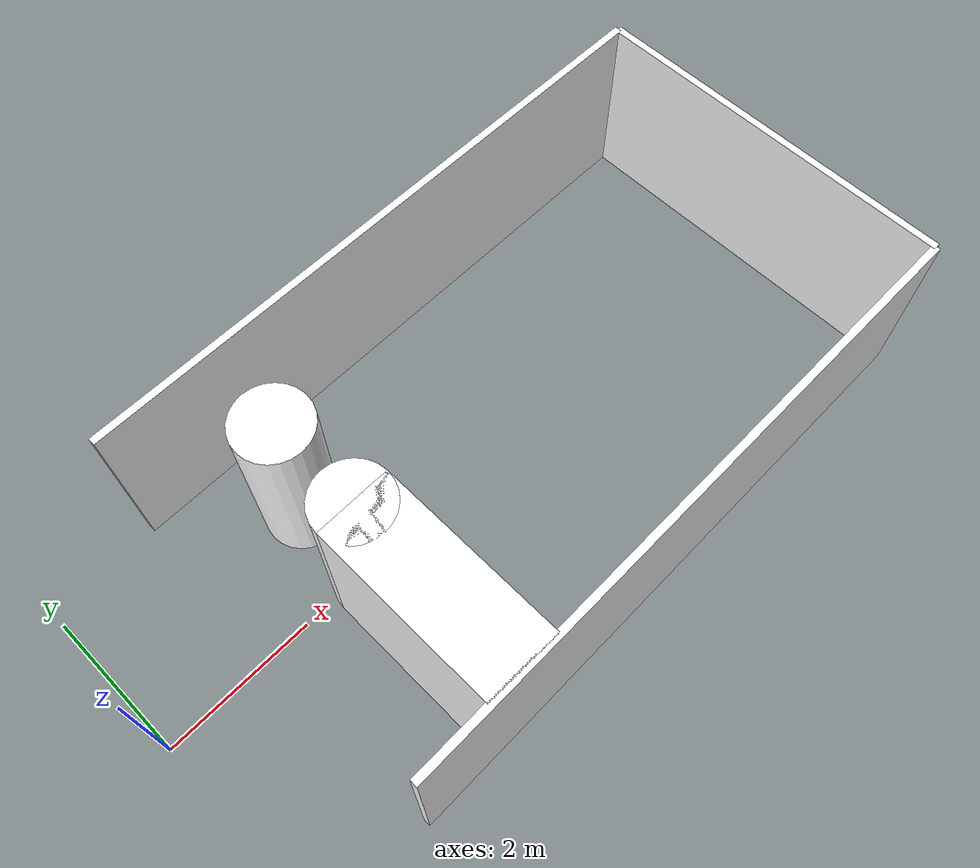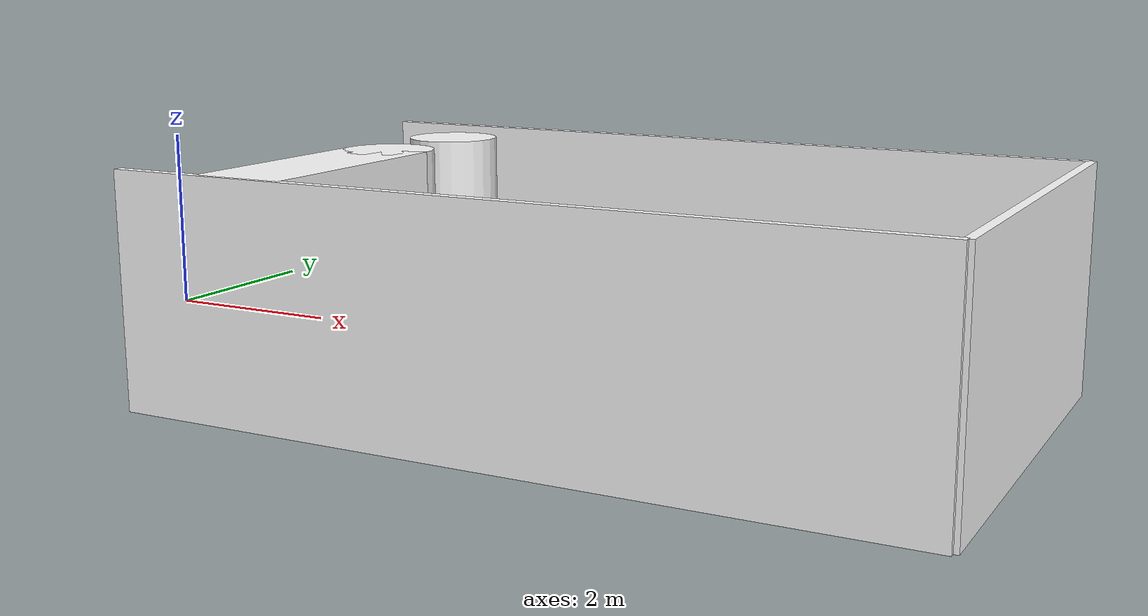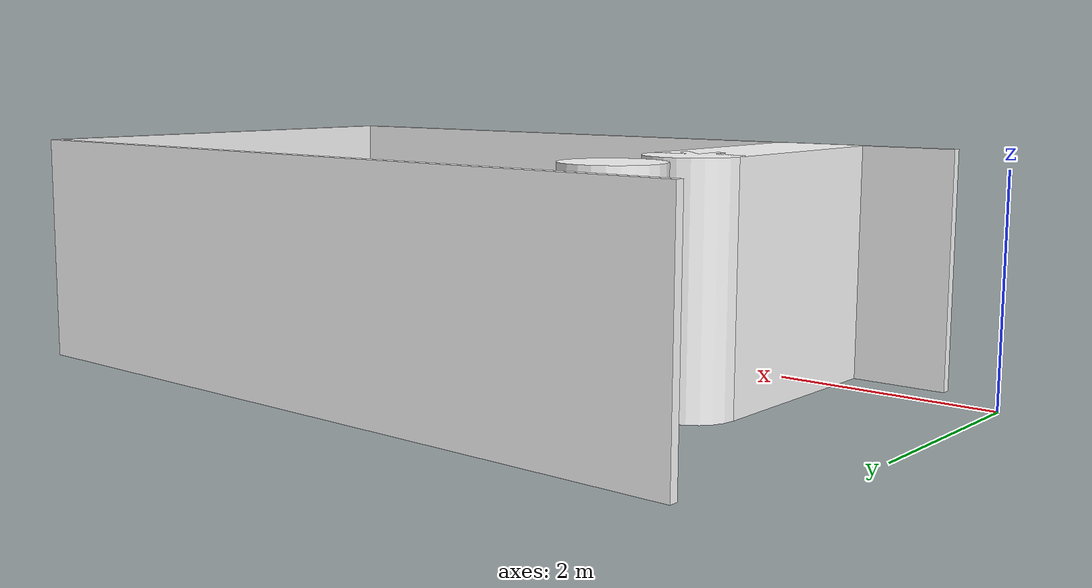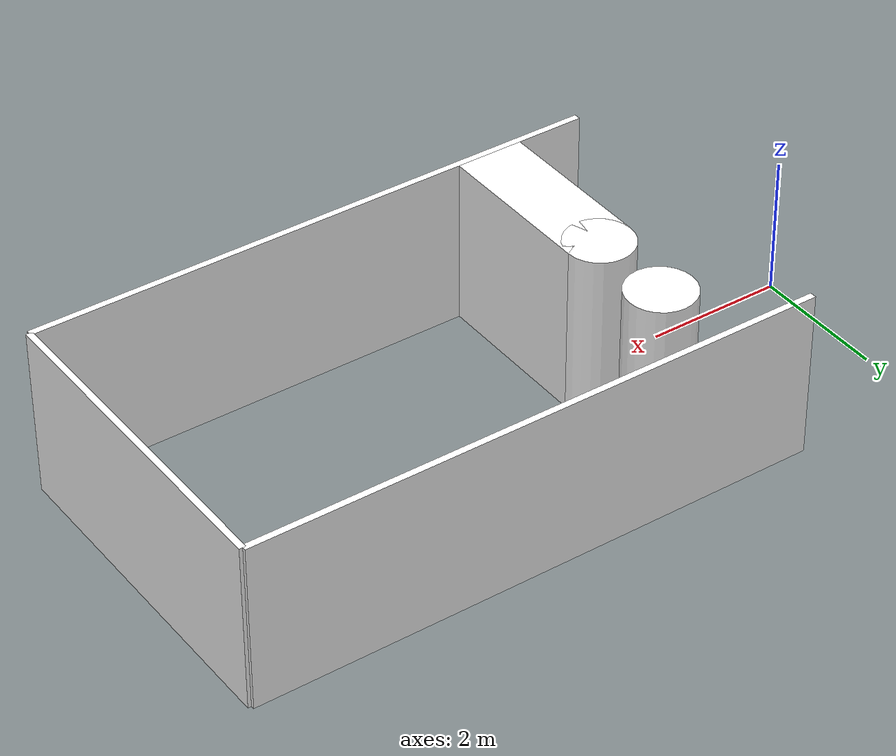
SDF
<?xml version='1.0' encoding='UTF-8'?>
<sdf version="1.10">
  <model name="convex_obsttacles_environment">

    <static>true</static>

    <link name="roof">
      <pose>5.75 0.0 2 0 0 0</pose>
      <collision name="roof_collision"><geometry><box><size>8.5 5.0 0.1</size></box></geometry></collision>
    </link>

    <link name="left_wall">
      <pose>5.75 2.5 0.75 0 0 0</pose>
      <collision name="left_wall_collision"><geometry><box><size>8.5 0.1 2.5</size></box></geometry></collision>
      <visual name="left_wall_visual"><geometry><box><size>8.5 0.1 2.5</size></box></geometry>
        <material><diffuse>1 1 1 1</diffuse><pbr><metal><albedo_map>/home/harshmodi/PX4-Autopilot/Tools/simulation/gz/models/realistic_room/materials/textures/brickwall.png</albedo_map></metal></pbr></material>
      </visual>
    </link>

    <link name="right_wall">
      <pose>5.75 -2.5 0.75 0 0 0</pose>
      <collision name="right_wall_collision"><geometry><box><size>8.5 0.1 2.5</size></box></geometry></collision>
      <visual name="right_wall_visual"><geometry><box><size>8.5 0.1 2.5</size></box></geometry>
        <material><diffuse>1 1 1 1</diffuse><pbr><metal><albedo_map>/home/harshmodi/PX4-Autopilot/Tools/simulation/gz/models/realistic_room/materials/textures/brickwall.png</albedo_map></metal></pbr></material>
      </visual>
    </link>

    <link name="front_wall">
      <pose>10 0.0 0.75 0 0 0</pose>
      <collision name="front_wall_collision"><geometry><box><size>0.1 5 2.5</size></box></geometry></collision>
      <visual name="front_wall_visual"><geometry><box><size>0.1 5 2.5</size></box></geometry>
        <material><diffuse>1 1 1 1</diffuse><pbr><metal><albedo_map>/home/harshmodi/PX4-Autopilot/Tools/simulation/gz/models/realistic_room/materials/textures/brickwall.png</albedo_map></metal></pbr></material>
      </visual>
    </link>

    <link name="obstacle1">
      <pose>3.0 1.3 0.75 0 0 0</pose>
      <collision name="obstacle1_collision"><geometry><cylinder><radius>0.5</radius><length>2.5</length></cylinder></geometry></collision>
      <visual name="obstacle1_visual"><geometry><cylinder><radius>0.5</radius><length>2.5</length></cylinder></geometry>
        <material><diffuse>1 1 1 1</diffuse><pbr><metal><albedo_map>/home/harshmodi/PX4-Autopilot/Tools/simulation/gz/models/realistic_room/materials/textures/brickwall.png</albedo_map></metal></pbr></material>
      </visual>
    </link>

    <link name="obstacle2">
      <pose>3.0 0.0 0.75 0 0 0</pose>
      <collision name="obstacle1_collision"><geometry><cylinder><radius>0.5</radius><length>2.5</length></cylinder></geometry></collision>
      <visual name="obstacle1_visual"><geometry><cylinder><radius>0.5</radius><length>2.5</length></cylinder></geometry>
        <material><diffuse>1 1 1 1</diffuse><pbr><metal><albedo_map>/home/harshmodi/PX4-Autopilot/Tools/simulation/gz/models/realistic_room/materials/textures/brickwall.png</albedo_map></metal></pbr></material>
      </visual>
    </link>

    <link name="obsacle3">
      <pose>3.0 -1.25 0.75 0 0 0</pose>
      <collision name="obsacle3_collision"><geometry><box><size>1.0 2.5 2.5</size></box></geometry></collision>
      <visual name="obsacle3_visual"><geometry><box><size>1.0 2.5 2.5</size></box></geometry>
        <material><diffuse>1 1 1 1</diffuse><pbr><metal><albedo_map>/home/harshmodi/PX4-Autopilot/Tools/simulation/gz/models/realistic_room/materials/textures/brickwall.png</albedo_map></metal></pbr></material>
      </visual>
    </link>

  </model>
</sdf>
